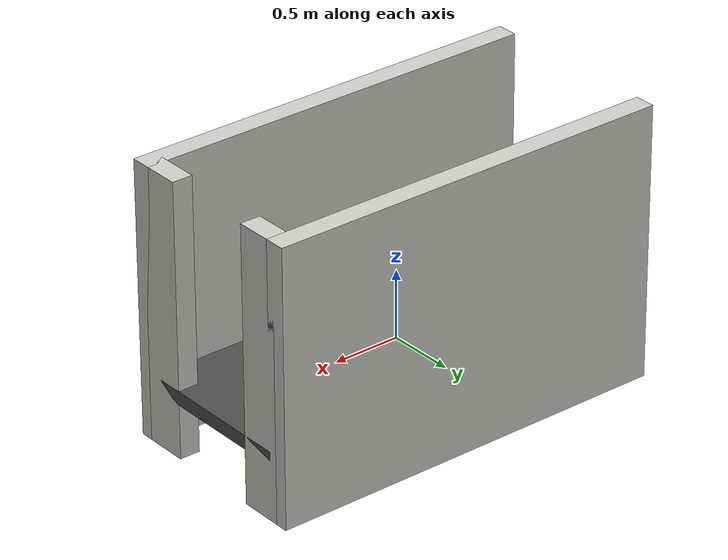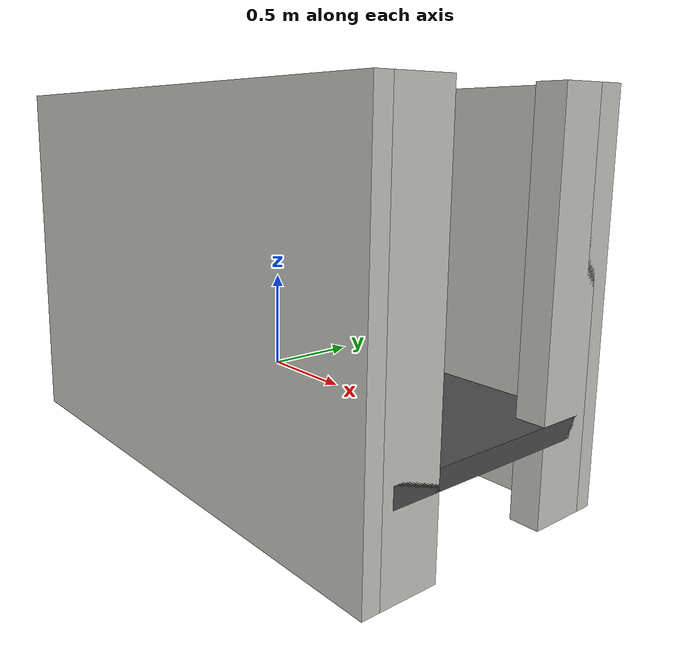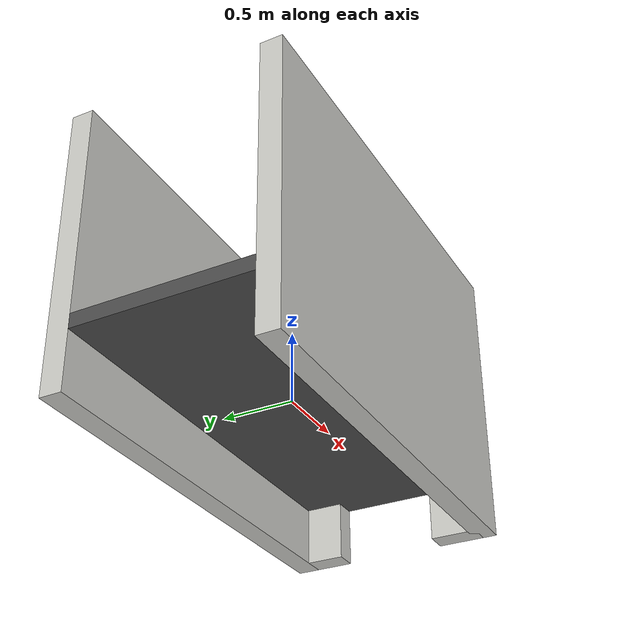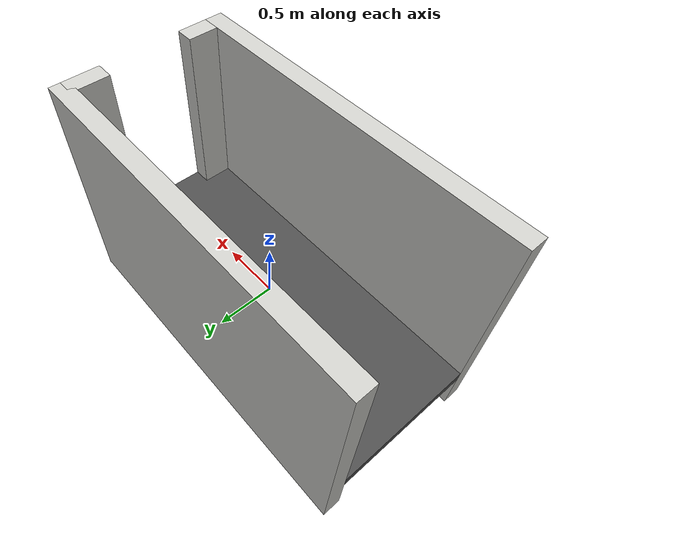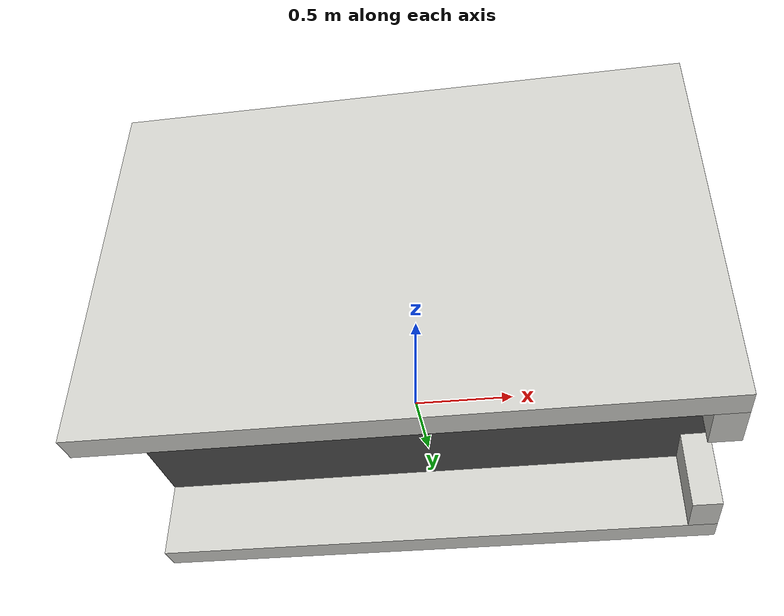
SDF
<?xml version="1.0" ?>
<sdf version="1.5">
  <model name="task4">

    <include>
      <name>task4_road</name>
      <pose>0 0 -0.05 0 0 0</pose>
      <uri>model://task4_road</uri>
    </include>

    <include>
      <name>wall_3125_1</name>
      <pose>1.425 0.5 0.5 0 0 0</pose>
      <uri>model://wall_3125</uri>
    </include>
    <include>
      <name>wall_3125_2</name>
      <pose>1.425 -0.5 0.5 0 0 0</pose>
      <uri>model://wall_3125</uri>
    </include>

    <include>
      <name>wall_3_1</name>
      <pose>0 0.675 0.5 0 0 0</pose>
      <uri>model://wall_3</uri>
    </include>
    <include>
      <name>wall_3_2</name>
      <pose>0 -0.675 0.5 0 0 0</pose>
      <uri>model://wall_3</uri>
    </include>

    <include>
      <name>qp2</name>
      <pose>0 0.525 0.25 0 0 0</pose>
      <uri>model://qr_pole3</uri>
    </include>
  </model>
</sdf>

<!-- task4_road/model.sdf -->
<sdf version='1.6'>
  <model name='task4_road'>
    <pose frame=''>0 0 -0.1 -0 0</pose>
    <link name='task4'>
      <collision name='task4_Collision'>
        <geometry>
          <box>
            <size>3 1.2 0.1</size>
          </box>
        </geometry>
        <pose frame=''>0 0 0 0 -0 0</pose>
      </collision>
      <visual name='task4_Visual'>
        <pose frame=''>0 0 0 0 -0 0</pose>
        <geometry>
          <box>
            <size>3 1.2 0.1</size>
          </box>
        </geometry>
        <material>
          <script>
            <uri>file://media/materials/scripts/gazebo.material</uri>
            <name>Gazebo/Road</name>
          </script>
          <ambient>1 1 1 1</ambient>
        </material>
        <meta>
          <layer>0</layer>
        </meta>
      </visual>
      <pose frame=''>0 0 0 0 -0 0</pose>
    </link>
    <static>1</static>
  </model>
</sdf>

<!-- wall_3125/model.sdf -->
<sdf version='1.6'>
  <model name='wall_3125'>
    <pose frame=''>0 0 0.5 0 -0 0</pose>
    <link name='Wall_45'>
      <collision name='Wall_45_Collision'>
        <geometry>
          <box>
            <size>0.15 0.3125 2</size>
          </box>
        </geometry>
        <pose frame=''>0 0 0 0 -0 0</pose>
      </collision>
      <visual name='Wall_45_Visual'>
        <pose frame=''>0 0 0 0 -0 0</pose>
        <geometry>
          <box>
            <size>0.15 0.3125 2</size>
          </box>
        </geometry>
        <material>
          <script>
            <uri>file://media/materials/scripts/gazebo.material</uri>
            <name>Gazebo/CeilingTiled</name>
          </script>
          <ambient>1 1 1 1</ambient>
        </material>
        <meta>
          <layer>0</layer>
        </meta>
      </visual>
      <pose frame=''>0 0 0 0 -0 0</pose>
    </link>
    <static>1</static>
  </model>
</sdf>

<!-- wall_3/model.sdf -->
<sdf version='1.6'>
  <model name='wall_3'>
    <pose frame=''>0 0 0.5 0 -0 0</pose>
    <link name='Wall_45'>
      <collision name='Wall_45_Collision'>
        <geometry>
          <box>
            <size>3 0.15 2</size>
          </box>
        </geometry>
        <pose frame=''>0 0 0 0 -0 0</pose>
      </collision>
      <visual name='Wall_45_Visual'>
        <pose frame=''>0 0 0 0 -0 0</pose>
        <geometry>
          <box>
            <size>3 0.15 2</size>
          </box>
        </geometry>
        <material>
          <script>
            <uri>file://media/materials/scripts/gazebo.material</uri>
            <name>Gazebo/CeilingTiled</name>
          </script>
          <ambient>1 1 1 1</ambient>
        </material>
        <meta>
          <layer>0</layer>
        </meta>
      </visual>
      <pose frame=''>0 0 0 0 -0 0</pose>
    </link>
    <static>1</static>
  </model>
</sdf>

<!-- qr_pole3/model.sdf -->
<sdf version="1.5">
  <model name="qr_pole3">
    <static>true</static>
    <link name="link">
      <pose>0 0 0 0 0 0</pose>
      <collision name="collision">
        <geometry>
          <box>
            <size>0.15 0.15 0.5</size>
          </box>
        </geometry>
      </collision>
      <visual name="visual">
        <cast_shadows>false</cast_shadows>
        <geometry>
          <box>
            <size>0.15 0.15 0.5</size>
          </box>
        </geometry>
        <material>
          <ambient>0.25 0.8 0.8 1</ambient>
          <diffuse>0.25 0.8 0.8 1</diffuse>
          <specular>0.25 0.8 0.8 1</specular>
        </material>
      </visual>
    </link>
  </model>
</sdf>
